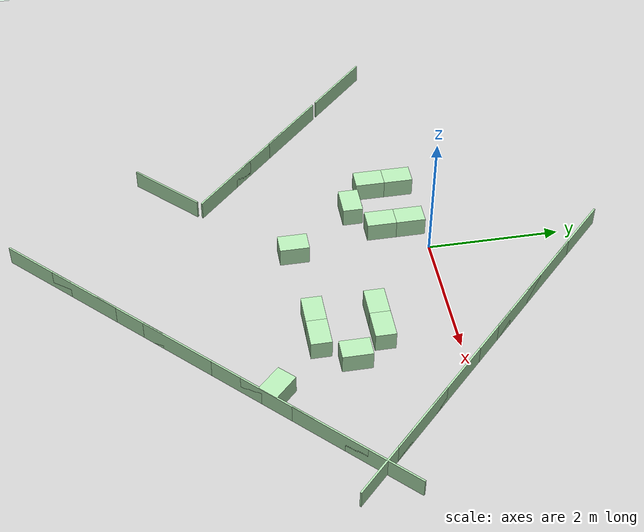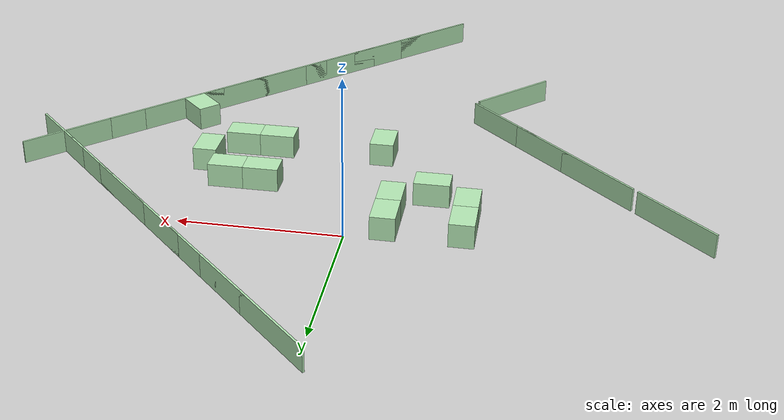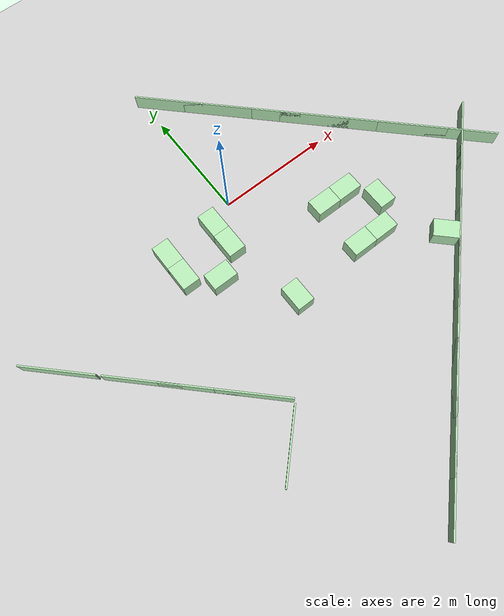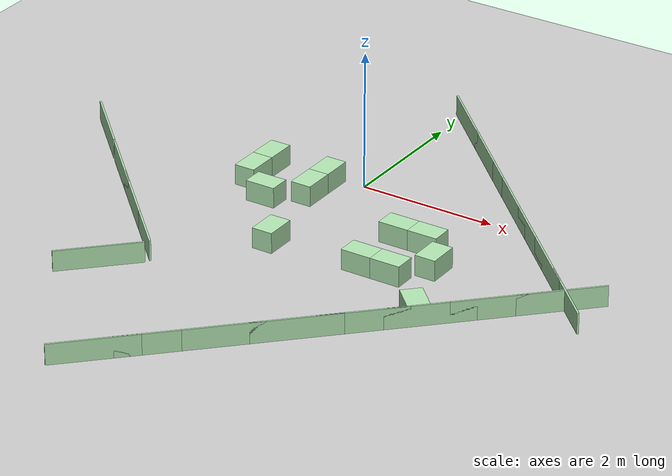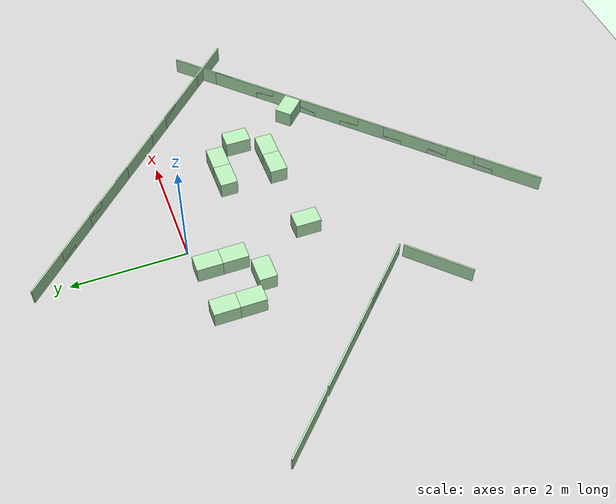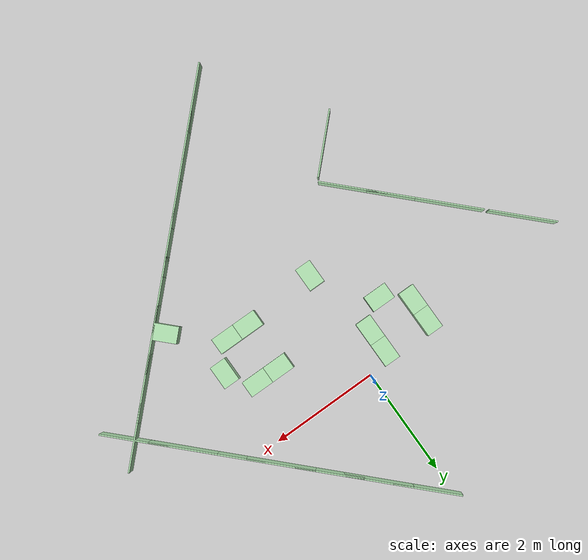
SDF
<?xml version="1.0" encoding="UTF-8"?>
<sdf version="1.4">
  <world name="default">
    <scene>
      <ambient>0.5 0.5 0.5 1</ambient>
      <background>0.5 0.5 0.5 1</background>
      <shadows>false</shadows>
    </scene>
    <physics type="ode">
      <gravity>0 0 -9.81</gravity>
      <ode>
        <solver>
          <type>quick</type>
          <iters>10</iters>
          <sor>1.3</sor>
        </solver>
        <constraints>
          <cfm>0.0</cfm>
          <erp>0.2</erp>
          <contact_max_correcting_vel>100.0</contact_max_correcting_vel>
          <contact_surface_layer>0.001</contact_surface_layer>
        </constraints>
      </ode>
      <real_time_update_rate>1000</real_time_update_rate>
      <max_step_size>0.001</max_step_size>
    </physics>
    <light type="directional" name="directional_light_1">
      <cast_shadows>false</cast_shadows>
      <pose>0 0 30 0.1 0.1 0</pose>
      <diffuse>1.0 1.0 1.0 1</diffuse>
      <specular>.1 .1 .1 1</specular>
      <attenuation>
        <range>300</range>
      </attenuation>
      <direction>0.1 0.1 -1</direction>
    </light>
    <model name='ground_plane'>
      <static>1</static>
      <link name='link'>
        <collision name='collision'>
          <geometry>
            <plane>
              <normal>0 0 1</normal>
              <size>100 100</size>
            </plane>
          </geometry>
          <surface>
            <friction>
              <ode>
                <mu>100</mu>
                <mu2>50</mu2>
              </ode>
              <torsional>
                <ode/>
              </torsional>
            </friction>
            <contact>
              <ode/>
            </contact>
            <bounce/>
          </surface>
          <max_contacts>10</max_contacts>
        </collision>
        <visual name='visual'>
          <cast_shadows>0</cast_shadows>
          <geometry>
            <plane>
              <normal>0 0 1</normal>
              <size>100 100</size>
            </plane>
          </geometry>
          <material>
            <script>
              <uri>file://media/materials/scripts/gazebo.material</uri>
              <name>Gazebo/Grey</name>
            </script>
          </material>
        </visual>
        <self_collide>0</self_collide>
        <kinematic>0</kinematic>
        <gravity>1</gravity>
      </link>
    </model>

<!--______________________________gazebo world______________________________ -->
    <model name="wall_1">
      <static>true</static>
      <link name="wall_1_link">
        <pose> -3.784909710044022 -0.7369097100440215  0.15 0 0 0.7853981633974483</pose>
        <collision name="wall_1_collision">
          <geometry>
            <box>
              <size>0.0254 1.2191999999999998 0.3</size>
            </box>
          </geometry>
        </collision>
        <visual name="wall_1_visual">
          <geometry>
            <box>
              <size>0.0254 1.2191999999999998 0.3</size>
            </box>
          </geometry>
          <material>
             <ambient>0.7 0.9 0.7 1.0</ambient>
             <diffuse>0.7 0.9 0.7 1.0</diffuse>
             <specular>0.1 0.1 0.1 1</specular>
             <emissive>0 0 0 0</emissive>
           </material>
        </visual>
      </link>
    </model>

    <model name="wall_2">
      <static>true</static>
      <link name="wall_2_link">
        <pose> -2.870509710044022 -1.6513097100440215  0.15 0 0 0.7853981633974483</pose>
        <collision name="wall_2_collision">
          <geometry>
            <box>
              <size>0.0254 1.2191999999999998 0.3</size>
            </box>
          </geometry>
        </collision>
        <visual name="wall_2_visual">
          <geometry>
            <box>
              <size>0.0254 1.2191999999999998 0.3</size>
            </box>
          </geometry>
          <material>
             <ambient>0.7 0.9 0.7 1.0</ambient>
             <diffuse>0.7 0.9 0.7 1.0</diffuse>
             <specular>0.1 0.1 0.1 1</specular>
             <emissive>0 0 0 0</emissive>
           </material>
        </visual>
      </link>
    </model>

    <model name="wall_3">
      <static>true</static>
      <link name="wall_3_link">
        <pose> -2.2609097100440216 -2.2609097100440216  0.15 0 0 0.7853981633974483</pose>
        <collision name="wall_3_collision">
          <geometry>
            <box>
              <size>0.0254 1.2191999999999998 0.3</size>
            </box>
          </geometry>
        </collision>
        <visual name="wall_3_visual">
          <geometry>
            <box>
              <size>0.0254 1.2191999999999998 0.3</size>
            </box>
          </geometry>
          <material>
             <ambient>0.7 0.9 0.7 1.0</ambient>
             <diffuse>0.7 0.9 0.7 1.0</diffuse>
             <specular>0.1 0.1 0.1 1</specular>
             <emissive>0 0 0 0</emissive>
           </material>
        </visual>
      </link>
    </model>

    <model name="wall_4">
      <static>true</static>
      <link name="wall_4_link">
        <pose> -1.6513097100440217 -2.8705097100440216  0.15 0 0 0.7853981633974483</pose>
        <collision name="wall_4_collision">
          <geometry>
            <box>
              <size>0.0254 1.2191999999999998 0.3</size>
            </box>
          </geometry>
        </collision>
        <visual name="wall_4_visual">
          <geometry>
            <box>
              <size>0.0254 1.2191999999999998 0.3</size>
            </box>
          </geometry>
          <material>
             <ambient>0.7 0.9 0.7 1.0</ambient>
             <diffuse>0.7 0.9 0.7 1.0</diffuse>
             <specular>0.1 0.1 0.1 1</specular>
             <emissive>0 0 0 0</emissive>
           </material>
        </visual>
      </link>
    </model>

    <model name="wall_5">
      <static>true</static>
      <link name="wall_5_link">
        <pose> -1.6940961581839629 -3.7923038418160373  0.15 0 0 -0.7853981633974483</pose>
        <collision name="wall_5_collision">
          <geometry>
            <box>
              <size>0.0254 1.2191999999999998 0.3</size>
            </box>
          </geometry>
        </collision>
        <visual name="wall_5_visual">
          <geometry>
            <box>
              <size>0.0254 1.2191999999999998 0.3</size>
            </box>
          </geometry>
          <material>
             <ambient>0.7 0.9 0.7 1.0</ambient>
             <diffuse>0.7 0.9 0.7 1.0</diffuse>
             <specular>0.1 0.1 0.1 1</specular>
             <emissive>0 0 0 0</emissive>
           </material>
        </visual>
      </link>
    </model>

    <model name="wall_6">
      <static>true</static>
      <link name="wall_6_link">
        <pose> 0.3322694764795587 2.1610694764795584  0.15 0 0 0.7853981633974483</pose>
        <collision name="wall_6_collision">
          <geometry>
            <box>
              <size>0.0254 1.2191999999999998 0.3</size>
            </box>
          </geometry>
        </collision>
        <visual name="wall_6_visual">
          <geometry>
            <box>
              <size>0.0254 1.2191999999999998 0.3</size>
            </box>
          </geometry>
          <material>
             <ambient>0.7 0.9 0.7 1.0</ambient>
             <diffuse>0.7 0.9 0.7 1.0</diffuse>
             <specular>0.1 0.1 0.1 1</specular>
             <emissive>0 0 0 0</emissive>
           </material>
        </visual>
      </link>
    </model>

    <model name="wall_7">
      <static>true</static>
      <link name="wall_7_link">
        <pose> 0.9418694764795588 1.5514694764795585  0.15 0 0 0.7853981633974483</pose>
        <collision name="wall_7_collision">
          <geometry>
            <box>
              <size>0.0254 1.2191999999999998 0.3</size>
            </box>
          </geometry>
        </collision>
        <visual name="wall_7_visual">
          <geometry>
            <box>
              <size>0.0254 1.2191999999999998 0.3</size>
            </box>
          </geometry>
          <material>
             <ambient>0.7 0.9 0.7 1.0</ambient>
             <diffuse>0.7 0.9 0.7 1.0</diffuse>
             <specular>0.1 0.1 0.1 1</specular>
             <emissive>0 0 0 0</emissive>
           </material>
        </visual>
      </link>
    </model>

    <model name="wall_8">
      <static>true</static>
      <link name="wall_8_link">
        <pose> 1.551469476479559 0.9418694764795587  0.15 0 0 0.7853981633974483</pose>
        <collision name="wall_8_collision">
          <geometry>
            <box>
              <size>0.0254 1.2191999999999998 0.3</size>
            </box>
          </geometry>
        </collision>
        <visual name="wall_8_visual">
          <geometry>
            <box>
              <size>0.0254 1.2191999999999998 0.3</size>
            </box>
          </geometry>
          <material>
             <ambient>0.7 0.9 0.7 1.0</ambient>
             <diffuse>0.7 0.9 0.7 1.0</diffuse>
             <specular>0.1 0.1 0.1 1</specular>
             <emissive>0 0 0 0</emissive>
           </material>
        </visual>
      </link>
    </model>

    <model name="wall_9">
      <static>true</static>
      <link name="wall_9_link">
        <pose> 2.161069476479559 0.3322694764795586  0.15 0 0 0.7853981633974483</pose>
        <collision name="wall_9_collision">
          <geometry>
            <box>
              <size>0.0254 1.2191999999999998 0.3</size>
            </box>
          </geometry>
        </collision>
        <visual name="wall_9_visual">
          <geometry>
            <box>
              <size>0.0254 1.2191999999999998 0.3</size>
            </box>
          </geometry>
          <material>
             <ambient>0.7 0.9 0.7 1.0</ambient>
             <diffuse>0.7 0.9 0.7 1.0</diffuse>
             <specular>0.1 0.1 0.1 1</specular>
             <emissive>0 0 0 0</emissive>
           </material>
        </visual>
      </link>
    </model>

    <model name="wall_10">
      <static>true</static>
      <link name="wall_10_link">
        <pose> 2.7706694764795587 -0.2773305235204414  0.15 0 0 0.7853981633974483</pose>
        <collision name="wall_10_collision">
          <geometry>
            <box>
              <size>0.0254 1.2191999999999998 0.3</size>
            </box>
          </geometry>
        </collision>
        <visual name="wall_10_visual">
          <geometry>
            <box>
              <size>0.0254 1.2191999999999998 0.3</size>
            </box>
          </geometry>
          <material>
             <ambient>0.7 0.9 0.7 1.0</ambient>
             <diffuse>0.7 0.9 0.7 1.0</diffuse>
             <specular>0.1 0.1 0.1 1</specular>
             <emissive>0 0 0 0</emissive>
           </material>
        </visual>
      </link>
    </model>

    <model name="wall_11">
      <static>true</static>
      <link name="wall_11_link">
        <pose> 3.3802694764795587 -0.8869305235204414  0.15 0 0 0.7853981633974483</pose>
        <collision name="wall_11_collision">
          <geometry>
            <box>
              <size>0.0254 1.2191999999999998 0.3</size>
            </box>
          </geometry>
        </collision>
        <visual name="wall_11_visual">
          <geometry>
            <box>
              <size>0.0254 1.2191999999999998 0.3</size>
            </box>
          </geometry>
          <material>
             <ambient>0.7 0.9 0.7 1.0</ambient>
             <diffuse>0.7 0.9 0.7 1.0</diffuse>
             <specular>0.1 0.1 0.1 1</specular>
             <emissive>0 0 0 0</emissive>
           </material>
        </visual>
      </link>
    </model>

    <model name="wall_12">
      <static>true</static>
      <link name="wall_12_link">
        <pose> 3.9898694764795586 -1.4965305235204416  0.15 0 0 0.7853981633974483</pose>
        <collision name="wall_12_collision">
          <geometry>
            <box>
              <size>0.0254 1.2191999999999998 0.3</size>
            </box>
          </geometry>
        </collision>
        <visual name="wall_12_visual">
          <geometry>
            <box>
              <size>0.0254 1.2191999999999998 0.3</size>
            </box>
          </geometry>
          <material>
             <ambient>0.7 0.9 0.7 1.0</ambient>
             <diffuse>0.7 0.9 0.7 1.0</diffuse>
             <specular>0.1 0.1 0.1 1</specular>
             <emissive>0 0 0 0</emissive>
           </material>
        </visual>
      </link>
    </model>

    <model name="wall_13">
      <static>true</static>
      <link name="wall_13_link">
        <pose> -0.3121941317720156 -5.783805868227984  0.15 0 0 -0.7853981633974483</pose>
        <collision name="wall_13_collision">
          <geometry>
            <box>
              <size>0.0254 1.2191999999999998 0.3</size>
            </box>
          </geometry>
        </collision>
        <visual name="wall_13_visual">
          <geometry>
            <box>
              <size>0.0254 1.2191999999999998 0.3</size>
            </box>
          </geometry>
          <material>
             <ambient>0.7 0.9 0.7 1.0</ambient>
             <diffuse>0.7 0.9 0.7 1.0</diffuse>
             <specular>0.1 0.1 0.1 1</specular>
             <emissive>0 0 0 0</emissive>
           </material>
        </visual>
      </link>
    </model>

    <model name="wall_14">
      <static>true</static>
      <link name="wall_14_link">
        <pose> 0.2974058682279844 -5.174205868227984  0.15 0 0 -0.7853981633974483</pose>
        <collision name="wall_14_collision">
          <geometry>
            <box>
              <size>0.0254 1.2191999999999998 0.3</size>
            </box>
          </geometry>
        </collision>
        <visual name="wall_14_visual">
          <geometry>
            <box>
              <size>0.0254 1.2191999999999998 0.3</size>
            </box>
          </geometry>
          <material>
             <ambient>0.7 0.9 0.7 1.0</ambient>
             <diffuse>0.7 0.9 0.7 1.0</diffuse>
             <specular>0.1 0.1 0.1 1</specular>
             <emissive>0 0 0 0</emissive>
           </material>
        </visual>
      </link>
    </model>

    <model name="wall_15">
      <static>true</static>
      <link name="wall_15_link">
        <pose> 0.9070058682279845 -4.564605868227985  0.15 0 0 -0.7853981633974483</pose>
        <collision name="wall_15_collision">
          <geometry>
            <box>
              <size>0.0254 1.2191999999999998 0.3</size>
            </box>
          </geometry>
        </collision>
        <visual name="wall_15_visual">
          <geometry>
            <box>
              <size>0.0254 1.2191999999999998 0.3</size>
            </box>
          </geometry>
          <material>
             <ambient>0.7 0.9 0.7 1.0</ambient>
             <diffuse>0.7 0.9 0.7 1.0</diffuse>
             <specular>0.1 0.1 0.1 1</specular>
             <emissive>0 0 0 0</emissive>
           </material>
        </visual>
      </link>
    </model>

    <model name="wall_16">
      <static>true</static>
      <link name="wall_16_link">
        <pose> 1.5166058682279846 -3.9550058682279845  0.15 0 0 -0.7853981633974483</pose>
        <collision name="wall_16_collision">
          <geometry>
            <box>
              <size>0.0254 1.2191999999999998 0.3</size>
            </box>
          </geometry>
        </collision>
        <visual name="wall_16_visual">
          <geometry>
            <box>
              <size>0.0254 1.2191999999999998 0.3</size>
            </box>
          </geometry>
          <material>
             <ambient>0.7 0.9 0.7 1.0</ambient>
             <diffuse>0.7 0.9 0.7 1.0</diffuse>
             <specular>0.1 0.1 0.1 1</specular>
             <emissive>0 0 0 0</emissive>
           </material>
        </visual>
      </link>
    </model>

    <model name="wall_17">
      <static>true</static>
      <link name="wall_17_link">
        <pose> 2.1262058682279847 -3.3454058682279846  0.15 0 0 -0.7853981633974483</pose>
        <collision name="wall_17_collision">
          <geometry>
            <box>
              <size>0.0254 1.2191999999999998 0.3</size>
            </box>
          </geometry>
        </collision>
        <visual name="wall_17_visual">
          <geometry>
            <box>
              <size>0.0254 1.2191999999999998 0.3</size>
            </box>
          </geometry>
          <material>
             <ambient>0.7 0.9 0.7 1.0</ambient>
             <diffuse>0.7 0.9 0.7 1.0</diffuse>
             <specular>0.1 0.1 0.1 1</specular>
             <emissive>0 0 0 0</emissive>
           </material>
        </visual>
      </link>
    </model>

    <model name="wall_18">
      <static>true</static>
      <link name="wall_18_link">
        <pose> 2.7358058682279847 -2.7358058682279847  0.15 0 0 -0.7853981633974483</pose>
        <collision name="wall_18_collision">
          <geometry>
            <box>
              <size>0.0254 1.2191999999999998 0.3</size>
            </box>
          </geometry>
        </collision>
        <visual name="wall_18_visual">
          <geometry>
            <box>
              <size>0.0254 1.2191999999999998 0.3</size>
            </box>
          </geometry>
          <material>
             <ambient>0.7 0.9 0.7 1.0</ambient>
             <diffuse>0.7 0.9 0.7 1.0</diffuse>
             <specular>0.1 0.1 0.1 1</specular>
             <emissive>0 0 0 0</emissive>
           </material>
        </visual>
      </link>
    </model>

    <model name="wall_19">
      <static>true</static>
      <link name="wall_19_link">
        <pose> 3.3454058682279846 -2.1262058682279847  0.15 0 0 -0.7853981633974483</pose>
        <collision name="wall_19_collision">
          <geometry>
            <box>
              <size>0.0254 1.2191999999999998 0.3</size>
            </box>
          </geometry>
        </collision>
        <visual name="wall_19_visual">
          <geometry>
            <box>
              <size>0.0254 1.2191999999999998 0.3</size>
            </box>
          </geometry>
          <material>
             <ambient>0.7 0.9 0.7 1.0</ambient>
             <diffuse>0.7 0.9 0.7 1.0</diffuse>
             <specular>0.1 0.1 0.1 1</specular>
             <emissive>0 0 0 0</emissive>
           </material>
        </visual>
      </link>
    </model>

    <model name="wall_20">
      <static>true</static>
      <link name="wall_20_link">
        <pose> 3.9550058682279845 -1.5166058682279846  0.15 0 0 -0.7853981633974483</pose>
        <collision name="wall_20_collision">
          <geometry>
            <box>
              <size>0.0254 1.2191999999999998 0.3</size>
            </box>
          </geometry>
        </collision>
        <visual name="wall_20_visual">
          <geometry>
            <box>
              <size>0.0254 1.2191999999999998 0.3</size>
            </box>
          </geometry>
          <material>
             <ambient>0.7 0.9 0.7 1.0</ambient>
             <diffuse>0.7 0.9 0.7 1.0</diffuse>
             <specular>0.1 0.1 0.1 1</specular>
             <emissive>0 0 0 0</emissive>
           </material>
        </visual>
      </link>
    </model>

    <model name="box_1">
      <static>true</static>
      <link name="box_1_link">
        <pose> 1.2192 -1.0668  0.15 0 0 1.5707963267948966</pose>
        <collision name="box_1_collision">
          <geometry>
            <box>
              <size>0.30479999999999996 0.4445 0.3</size>
            </box>
          </geometry>
        </collision>
        <visual name="box_1_visual">
          <geometry>
            <box>
              <size>0.30479999999999996 0.4445 0.3</size>
            </box>
          </geometry>
          <material>
             <ambient>0.7 0.9 0.7 1.0</ambient>
             <diffuse>0.7 0.9 0.7 1.0</diffuse>
             <specular>0.1 0.1 0.1 1</specular>
             <emissive>0 0 0 0</emissive>
           </material>
        </visual>
      </link>
    </model>

    <model name="box_2">
      <static>true</static>
      <link name="box_2_link">
        <pose> 1.6637 -1.0668  0.15 0 0 1.5707963267948966</pose>
        <collision name="box_2_collision">
          <geometry>
            <box>
              <size>0.30479999999999996 0.4445 0.3</size>
            </box>
          </geometry>
        </collision>
        <visual name="box_2_visual">
          <geometry>
            <box>
              <size>0.30479999999999996 0.4445 0.3</size>
            </box>
          </geometry>
          <material>
             <ambient>0.7 0.9 0.7 1.0</ambient>
             <diffuse>0.7 0.9 0.7 1.0</diffuse>
             <specular>0.1 0.1 0.1 1</specular>
             <emissive>0 0 0 0</emissive>
           </material>
        </visual>
      </link>
    </model>

    <model name="box_3">
      <static>true</static>
      <link name="box_3_link">
        <pose> 1.2192 -1.9812  0.15 0 0 1.5707963267948966</pose>
        <collision name="box_3_collision">
          <geometry>
            <box>
              <size>0.30479999999999996 0.4445 0.3</size>
            </box>
          </geometry>
        </collision>
        <visual name="box_3_visual">
          <geometry>
            <box>
              <size>0.30479999999999996 0.4445 0.3</size>
            </box>
          </geometry>
          <material>
             <ambient>0.7 0.9 0.7 1.0</ambient>
             <diffuse>0.7 0.9 0.7 1.0</diffuse>
             <specular>0.1 0.1 0.1 1</specular>
             <emissive>0 0 0 0</emissive>
           </material>
        </visual>
      </link>
    </model>

    <model name="box_4">
      <static>true</static>
      <link name="box_4_link">
        <pose> 1.6637 -1.9812  0.15 0 0 1.5707963267948966</pose>
        <collision name="box_4_collision">
          <geometry>
            <box>
              <size>0.30479999999999996 0.4445 0.3</size>
            </box>
          </geometry>
        </collision>
        <visual name="box_4_visual">
          <geometry>
            <box>
              <size>0.30479999999999996 0.4445 0.3</size>
            </box>
          </geometry>
          <material>
             <ambient>0.7 0.9 0.7 1.0</ambient>
             <diffuse>0.7 0.9 0.7 1.0</diffuse>
             <specular>0.1 0.1 0.1 1</specular>
             <emissive>0 0 0 0</emissive>
           </material>
        </visual>
      </link>
    </model>

    <model name="box_5">
      <static>true</static>
      <link name="box_5_link">
        <pose> 2.03835 -1.524  0.15 0 0 0.0</pose>
        <collision name="box_5_collision">
          <geometry>
            <box>
              <size>0.30479999999999996 0.4445 0.3</size>
            </box>
          </geometry>
        </collision>
        <visual name="box_5_visual">
          <geometry>
            <box>
              <size>0.30479999999999996 0.4445 0.3</size>
            </box>
          </geometry>
          <material>
             <ambient>0.7 0.9 0.7 1.0</ambient>
             <diffuse>0.7 0.9 0.7 1.0</diffuse>
             <specular>0.1 0.1 0.1 1</specular>
             <emissive>0 0 0 0</emissive>
           </material>
        </visual>
      </link>
    </model>

    <model name="box_6">
      <static>true</static>
      <link name="box_6_link">
        <pose> 2.475378440716979 -2.6909045876226387  0.15 0 0 0.7853981633974483</pose>
        <collision name="box_6_collision">
          <geometry>
            <box>
              <size>0.30479999999999996 0.4445 0.3</size>
            </box>
          </geometry>
        </collision>
        <visual name="box_6_visual">
          <geometry>
            <box>
              <size>0.30479999999999996 0.4445 0.3</size>
            </box>
          </geometry>
          <material>
             <ambient>0.7 0.9 0.7 1.0</ambient>
             <diffuse>0.7 0.9 0.7 1.0</diffuse>
             <specular>0.1 0.1 0.1 1</specular>
             <emissive>0 0 0 0</emissive>
           </material>
        </visual>
      </link>
    </model>

    <model name="box_7">
      <static>true</static>
      <link name="box_7_link">
        <pose> -0.15239999999999998 -2.05105  0.15 0 0 0.0</pose>
        <collision name="box_7_collision">
          <geometry>
            <box>
              <size>0.30479999999999996 0.4445 0.3</size>
            </box>
          </geometry>
        </collision>
        <visual name="box_7_visual">
          <geometry>
            <box>
              <size>0.30479999999999996 0.4445 0.3</size>
            </box>
          </geometry>
          <material>
             <ambient>0.7 0.9 0.7 1.0</ambient>
             <diffuse>0.7 0.9 0.7 1.0</diffuse>
             <specular>0.1 0.1 0.1 1</specular>
             <emissive>0 0 0 0</emissive>
           </material>
        </visual>
      </link>
    </model>

    <model name="box_8">
      <static>true</static>
      <link name="box_8_link">
        <pose> -1.3716000000000002 -0.22225  0.15 0 0 0.0</pose>
        <collision name="box_8_collision">
          <geometry>
            <box>
              <size>0.30479999999999996 0.4445 0.3</size>
            </box>
          </geometry>
        </collision>
        <visual name="box_8_visual">
          <geometry>
            <box>
              <size>0.30479999999999996 0.4445 0.3</size>
            </box>
          </geometry>
          <material>
             <ambient>0.7 0.9 0.7 1.0</ambient>
             <diffuse>0.7 0.9 0.7 1.0</diffuse>
             <specular>0.1 0.1 0.1 1</specular>
             <emissive>0 0 0 0</emissive>
           </material>
        </visual>
      </link>
    </model>

    <model name="box_9">
      <static>true</static>
      <link name="box_9_link">
        <pose> -1.3716000000000002 -0.22225  0.15 0 0 0.0</pose>
        <collision name="box_9_collision">
          <geometry>
            <box>
              <size>0.30479999999999996 0.4445 0.3</size>
            </box>
          </geometry>
        </collision>
        <visual name="box_9_visual">
          <geometry>
            <box>
              <size>0.30479999999999996 0.4445 0.3</size>
            </box>
          </geometry>
          <material>
             <ambient>0.7 0.9 0.7 1.0</ambient>
             <diffuse>0.7 0.9 0.7 1.0</diffuse>
             <specular>0.1 0.1 0.1 1</specular>
             <emissive>0 0 0 0</emissive>
           </material>
        </visual>
      </link>
    </model>

    <model name="box_10">
      <static>true</static>
      <link name="box_10_link">
        <pose> -1.3716000000000002 -0.6667500000000001  0.15 0 0 0.0</pose>
        <collision name="box_10_collision">
          <geometry>
            <box>
              <size>0.30479999999999996 0.4445 0.3</size>
            </box>
          </geometry>
        </collision>
        <visual name="box_10_visual">
          <geometry>
            <box>
              <size>0.30479999999999996 0.4445 0.3</size>
            </box>
          </geometry>
          <material>
             <ambient>0.7 0.9 0.7 1.0</ambient>
             <diffuse>0.7 0.9 0.7 1.0</diffuse>
             <specular>0.1 0.1 0.1 1</specular>
             <emissive>0 0 0 0</emissive>
           </material>
        </visual>
      </link>
    </model>

    <model name="box_11">
      <static>true</static>
      <link name="box_11_link">
        <pose> -0.45720000000000005 -0.22225  0.15 0 0 0.0</pose>
        <collision name="box_11_collision">
          <geometry>
            <box>
              <size>0.30479999999999996 0.4445 0.3</size>
            </box>
          </geometry>
        </collision>
        <visual name="box_11_visual">
          <geometry>
            <box>
              <size>0.30479999999999996 0.4445 0.3</size>
            </box>
          </geometry>
          <material>
             <ambient>0.7 0.9 0.7 1.0</ambient>
             <diffuse>0.7 0.9 0.7 1.0</diffuse>
             <specular>0.1 0.1 0.1 1</specular>
             <emissive>0 0 0 0</emissive>
           </material>
        </visual>
      </link>
    </model>

    <model name="box_12">
      <static>true</static>
      <link name="box_12_link">
        <pose> -0.45720000000000005 -0.6667500000000001  0.15 0 0 0.0</pose>
        <collision name="box_12_collision">
          <geometry>
            <box>
              <size>0.30479999999999996 0.4445 0.3</size>
            </box>
          </geometry>
        </collision>
        <visual name="box_12_visual">
          <geometry>
            <box>
              <size>0.30479999999999996 0.4445 0.3</size>
            </box>
          </geometry>
          <material>
             <ambient>0.7 0.9 0.7 1.0</ambient>
             <diffuse>0.7 0.9 0.7 1.0</diffuse>
             <specular>0.1 0.1 0.1 1</specular>
             <emissive>0 0 0 0</emissive>
           </material>
        </visual>
      </link>
    </model>

    <model name="box_13">
      <static>true</static>
      <link name="box_13_link">
        <pose> -0.9144000000000001 -1.0414  0.15 0 0 1.5707963267948966</pose>
        <collision name="box_13_collision">
          <geometry>
            <box>
              <size>0.30479999999999996 0.4445 0.3</size>
            </box>
          </geometry>
        </collision>
        <visual name="box_13_visual">
          <geometry>
            <box>
              <size>0.30479999999999996 0.4445 0.3</size>
            </box>
          </geometry>
          <material>
             <ambient>0.7 0.9 0.7 1.0</ambient>
             <diffuse>0.7 0.9 0.7 1.0</diffuse>
             <specular>0.1 0.1 0.1 1</specular>
             <emissive>0 0 0 0</emissive>
           </material>
        </visual>
      </link>
    </model>

<!--______________________________gazebo world______________________________ -->

  </world>
</sdf>
